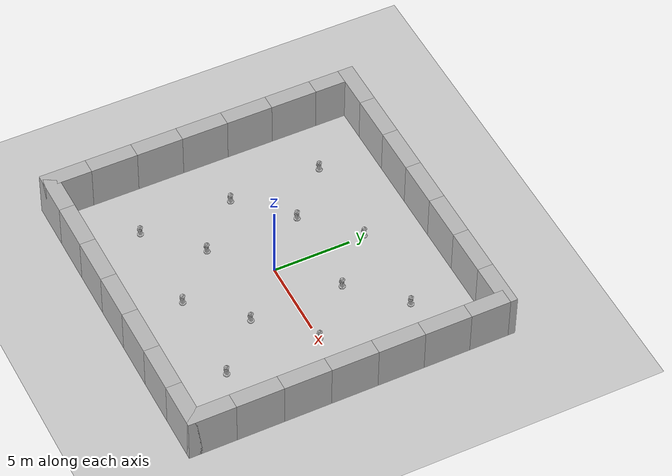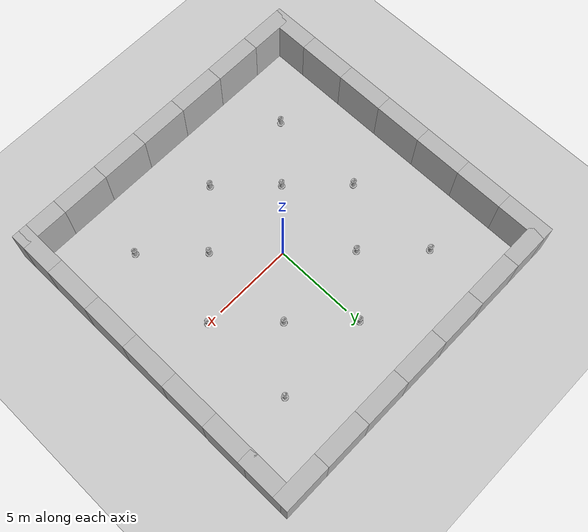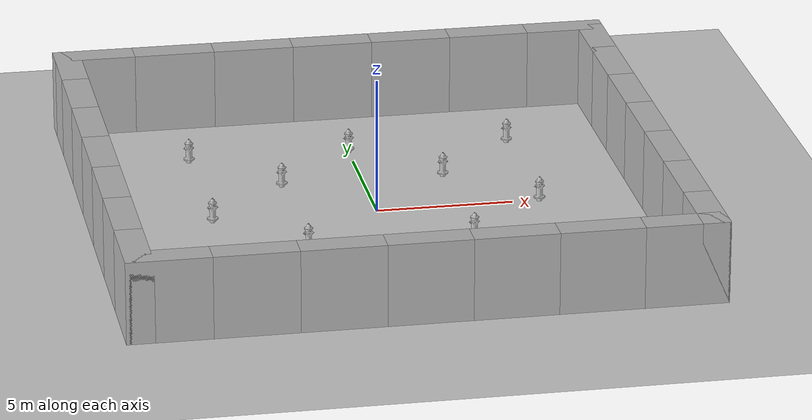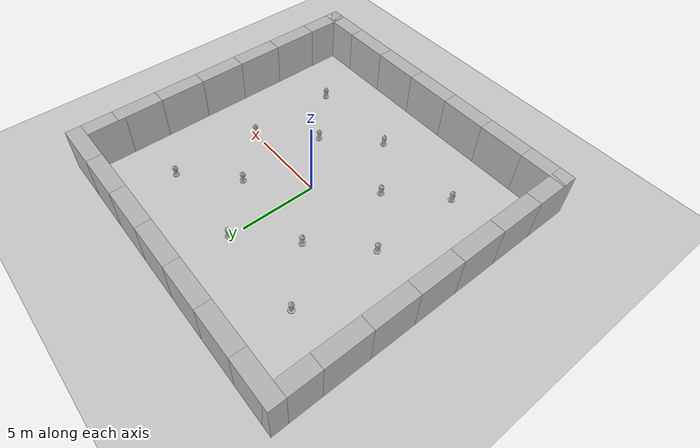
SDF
<sdf version="1.7">
 <world name="default">
  <model name="ground_plane">
   <static>1</static>
   <link name="link">
    <collision name="collision">
     <geometry><plane><normal>0 0 1</normal><size>100 100</size></plane></geometry>
     <surface>
      <contact><collide_bitmask>65535</collide_bitmask></contact>
      <friction><ode><mu>100</mu><mu2>50</mu2></ode></friction>
     </surface>
    </collision>
    <visual name="visual">
     <cast_shadows>0</cast_shadows>
     <geometry><plane><normal>0 0 1</normal><size>100 100</size></plane></geometry>
     <material>
      <script><uri>file://media/materials/scripts/gazebo.material</uri><name>Gazebo/Grey</name></script>
     </material>
    </visual>
   </link>
  </model>
  <model name="brick_box_3x1x3">
   <static>1</static>
   <link name="chassis">
    <pose>0 0 1.5 0 -0 0</pose>
    <collision name="collision"><geometry><box><size>3 1 3</size></box></geometry></collision>
    <visual name="visual">
     <geometry><mesh><uri>model://brick_box_3x1x3/meshes/simple_box.dae</uri><scale>3 1 3</scale></mesh></geometry>
     <material>
      <script>
       <uri>model://brick_box_3x1x3/materials/scripts</uri>
       <uri>model://brick_box_3x1x3/materials/textures</uri>
       <name>BrickBox/Diffuse</name>
      </script>
     </material>
    </visual>
   </link>
   <pose>0 10 0 0 -0 0</pose>
  </model>
  <model name="brick_box_3x1x3_clone">
   <static>1</static>
   <link name="chassis">
    <pose>0 0 1.5 0 -0 0</pose>
    <collision name="collision"><geometry><box><size>3 1 3</size></box></geometry></collision>
    <visual name="visual">
     <geometry><mesh><uri>model://brick_box_3x1x3/meshes/simple_box.dae</uri><scale>3 1 3</scale></mesh></geometry>
     <material>
      <script>
       <uri>model://brick_box_3x1x3/materials/scripts</uri>
       <uri>model://brick_box_3x1x3/materials/textures</uri>
       <name>BrickBox/Diffuse</name>
      </script>
     </material>
    </visual>
   </link>
   <pose>3 10 0 0 -0 0</pose>
  </model>
  <model name="brick_box_3x1x3_clone_0">
   <static>1</static>
   <link name="chassis">
    <pose>0 0 1.5 0 -0 0</pose>
    <collision name="collision"><geometry><box><size>3 1 3</size></box></geometry></collision>
    <visual name="visual">
     <geometry><mesh><uri>model://brick_box_3x1x3/meshes/simple_box.dae</uri><scale>3 1 3</scale></mesh></geometry>
     <material>
      <script>
       <uri>model://brick_box_3x1x3/materials/scripts</uri>
       <uri>model://brick_box_3x1x3/materials/textures</uri>
       <name>BrickBox/Diffuse</name>
      </script>
     </material>
    </visual>
   </link>
   <pose>6 10 0 0 -0 0</pose>
  </model>
  <model name="brick_box_3x1x3_clone_1">
   <static>1</static>
   <link name="chassis">
    <pose>0 0 1.5 0 -0 0</pose>
    <collision name="collision"><geometry><box><size>3 1 3</size></box></geometry></collision>
    <visual name="visual">
     <geometry><mesh><uri>model://brick_box_3x1x3/meshes/simple_box.dae</uri><scale>3 1 3</scale></mesh></geometry>
     <material>
      <script>
       <uri>model://brick_box_3x1x3/materials/scripts</uri>
       <uri>model://brick_box_3x1x3/materials/textures</uri>
       <name>BrickBox/Diffuse</name>
      </script>
     </material>
    </visual>
   </link>
   <pose>9 10 0 0 -0 0</pose>
  </model>
  <model name="brick_box_3x1x3_clone_2">
   <static>1</static>
   <link name="chassis">
    <pose>0 0 1.5 0 -0 0</pose>
    <collision name="collision"><geometry><box><size>3 1 3</size></box></geometry></collision>
    <visual name="visual">
     <geometry><mesh><uri>model://brick_box_3x1x3/meshes/simple_box.dae</uri><scale>3 1 3</scale></mesh></geometry>
     <material>
      <script>
       <uri>model://brick_box_3x1x3/materials/scripts</uri>
       <uri>model://brick_box_3x1x3/materials/textures</uri>
       <name>BrickBox/Diffuse</name>
      </script>
     </material>
    </visual>
   </link>
   <pose>-3 10 0 0 -0 0</pose>
  </model>
  <model name="brick_box_3x1x3_clone_3">
   <static>1</static>
   <link name="chassis">
    <pose>0 0 1.5 0 -0 0</pose>
    <collision name="collision"><geometry><box><size>3 1 3</size></box></geometry></collision>
    <visual name="visual">
     <geometry><mesh><uri>model://brick_box_3x1x3/meshes/simple_box.dae</uri><scale>3 1 3</scale></mesh></geometry>
     <material>
      <script>
       <uri>model://brick_box_3x1x3/materials/scripts</uri>
       <uri>model://brick_box_3x1x3/materials/textures</uri>
       <name>BrickBox/Diffuse</name>
      </script>
     </material>
    </visual>
   </link>
   <pose>-6 10 0 0 -0 0</pose>
  </model>
  <model name="brick_box_3x1x3_clone_4">
   <static>1</static>
   <link name="chassis">
    <pose>0 0 1.5 0 -0 0</pose>
    <collision name="collision"><geometry><box><size>3 1 3</size></box></geometry></collision>
    <visual name="visual">
     <geometry><mesh><uri>model://brick_box_3x1x3/meshes/simple_box.dae</uri><scale>3 1 3</scale></mesh></geometry>
     <material>
      <script>
       <uri>model://brick_box_3x1x3/materials/scripts</uri>
       <uri>model://brick_box_3x1x3/materials/textures</uri>
       <name>BrickBox/Diffuse</name>
      </script>
     </material>
    </visual>
   </link>
   <pose>-9 10 0 0 -0 0</pose>
  </model>
  <model name="brick_box_3x1x3_0_clone">
   <static>1</static>
   <link name="chassis">
    <pose>0 0 1.5 0 -0 0</pose>
    <collision name="collision"><geometry><box><size>3 1 3</size></box></geometry></collision>
    <visual name="visual">
     <geometry><mesh><uri>model://brick_box_3x1x3/meshes/simple_box.dae</uri><scale>3 1 3</scale></mesh></geometry>
     <material>
      <script>
       <uri>model://brick_box_3x1x3/materials/scripts</uri>
       <uri>model://brick_box_3x1x3/materials/textures</uri>
       <name>BrickBox/Diffuse</name>
      </script>
     </material>
    </visual>
   </link>
   <pose>10 -3 0 0 0 -1.5708</pose>
  </model>
  <model name="brick_box_3x1x3_0_clone_0">
   <static>1</static>
   <link name="chassis">
    <pose>0 0 1.5 0 -0 0</pose>
    <collision name="collision"><geometry><box><size>3 1 3</size></box></geometry></collision>
    <visual name="visual">
     <geometry><mesh><uri>model://brick_box_3x1x3/meshes/simple_box.dae</uri><scale>3 1 3</scale></mesh></geometry>
     <material>
      <script>
       <uri>model://brick_box_3x1x3/materials/scripts</uri>
       <uri>model://brick_box_3x1x3/materials/textures</uri>
       <name>BrickBox/Diffuse</name>
      </script>
     </material>
    </visual>
   </link>
   <pose>10 -6 0 0 0 -1.5708</pose>
  </model>
  <model name="brick_box_3x1x3_0_clone_1">
   <static>1</static>
   <link name="chassis">
    <pose>0 0 1.5 0 -0 0</pose>
    <collision name="collision"><geometry><box><size>3 1 3</size></box></geometry></collision>
    <visual name="visual">
     <geometry><mesh><uri>model://brick_box_3x1x3/meshes/simple_box.dae</uri><scale>3 1 3</scale></mesh></geometry>
     <material>
      <script>
       <uri>model://brick_box_3x1x3/materials/scripts</uri>
       <uri>model://brick_box_3x1x3/materials/textures</uri>
       <name>BrickBox/Diffuse</name>
      </script>
     </material>
    </visual>
   </link>
   <pose>10 -9 0 0 0 -1.5708</pose>
  </model>
  <model name="brick_box_3x1x3_0_clone_2">
   <static>1</static>
   <link name="chassis">
    <pose>0 0 1.5 0 -0 0</pose>
    <collision name="collision"><geometry><box><size>3 1 3</size></box></geometry></collision>
    <visual name="visual">
     <geometry><mesh><uri>model://brick_box_3x1x3/meshes/simple_box.dae</uri><scale>3 1 3</scale></mesh></geometry>
     <material>
      <script>
       <uri>model://brick_box_3x1x3/materials/scripts</uri>
       <uri>model://brick_box_3x1x3/materials/textures</uri>
       <name>BrickBox/Diffuse</name>
      </script>
     </material>
    </visual>
   </link>
   <pose>10 3 0 0 0 -1.5708</pose>
  </model>
  <model name="brick_box_3x1x3_0_clone_3">
   <static>1</static>
   <link name="chassis">
    <pose>0 0 1.5 0 -0 0</pose>
    <collision name="collision"><geometry><box><size>3 1 3</size></box></geometry></collision>
    <visual name="visual">
     <geometry><mesh><uri>model://brick_box_3x1x3/meshes/simple_box.dae</uri><scale>3 1 3</scale></mesh></geometry>
     <material>
      <script>
       <uri>model://brick_box_3x1x3/materials/scripts</uri>
       <uri>model://brick_box_3x1x3/materials/textures</uri>
       <name>BrickBox/Diffuse</name>
      </script>
     </material>
    </visual>
   </link>
   <pose>10 6 0 0 0 -1.5708</pose>
  </model>
  <model name="brick_box_3x1x3_0_clone_4">
   <static>1</static>
   <link name="chassis">
    <pose>0 0 1.5 0 -0 0</pose>
    <collision name="collision"><geometry><box><size>3 1 3</size></box></geometry></collision>
    <visual name="visual">
     <geometry><mesh><uri>model://brick_box_3x1x3/meshes/simple_box.dae</uri><scale>3 1 3</scale></mesh></geometry>
     <material>
      <script>
       <uri>model://brick_box_3x1x3/materials/scripts</uri>
       <uri>model://brick_box_3x1x3/materials/textures</uri>
       <name>BrickBox/Diffuse</name>
      </script>
     </material>
    </visual>
   </link>
   <pose>10 8.54287 0 0 0 -1.5708</pose>
  </model>
  <model name="brick_box_3x1x3_0_clone_clone">
   <static>1</static>
   <link name="chassis">
    <pose>0 0 1.5 0 -0 0</pose>
    <collision name="collision"><geometry><box><size>3 1 3</size></box></geometry></collision>
    <visual name="visual">
     <geometry><mesh><uri>model://brick_box_3x1x3/meshes/simple_box.dae</uri><scale>3 1 3</scale></mesh></geometry>
     <material>
      <script>
       <uri>model://brick_box_3x1x3/materials/scripts</uri>
       <uri>model://brick_box_3x1x3/materials/textures</uri>
       <name>BrickBox/Diffuse</name>
      </script>
     </material>
    </visual>
   </link>
   <pose>10 0 0 0 0 -1.5708</pose>
  </model>
  <model name="brick_box_3x1x3_0">
   <static>1</static>
   <link name="chassis">
    <pose>0 0 1.5 0 -0 0</pose>
    <collision name="collision"><geometry><box><size>3 1 3</size></box></geometry></collision>
    <visual name="visual">
     <geometry><mesh><uri>model://brick_box_3x1x3/meshes/simple_box.dae</uri><scale>3 1 3</scale></mesh></geometry>
     <material>
      <script>
       <uri>model://brick_box_3x1x3/materials/scripts</uri>
       <uri>model://brick_box_3x1x3/materials/textures</uri>
       <name>BrickBox/Diffuse</name>
      </script>
     </material>
    </visual>
   </link>
   <pose>0 -10 0 0 -0 0</pose>
  </model>
  <model name="brick_box_3x1x3_0_clone_5">
   <static>1</static>
   <link name="chassis">
    <pose>0 0 1.5 0 -0 0</pose>
    <collision name="collision"><geometry><box><size>3 1 3</size></box></geometry></collision>
    <visual name="visual">
     <geometry><mesh><uri>model://brick_box_3x1x3/meshes/simple_box.dae</uri><scale>3 1 3</scale></mesh></geometry>
     <material>
      <script>
       <uri>model://brick_box_3x1x3/materials/scripts</uri>
       <uri>model://brick_box_3x1x3/materials/textures</uri>
       <name>BrickBox/Diffuse</name>
      </script>
     </material>
    </visual>
   </link>
   <pose>-3 -10 0 0 -0 0</pose>
  </model>
  <model name="brick_box_3x1x3_0_clone_6">
   <static>1</static>
   <link name="chassis">
    <pose>0 0 1.5 0 -0 0</pose>
    <collision name="collision"><geometry><box><size>3 1 3</size></box></geometry></collision>
    <visual name="visual">
     <geometry><mesh><uri>model://brick_box_3x1x3/meshes/simple_box.dae</uri><scale>3 1 3</scale></mesh></geometry>
     <material>
      <script>
       <uri>model://brick_box_3x1x3/materials/scripts</uri>
       <uri>model://brick_box_3x1x3/materials/textures</uri>
       <name>BrickBox/Diffuse</name>
      </script>
     </material>
    </visual>
   </link>
   <pose>-6 -10 0 0 -0 0</pose>
  </model>
  <model name="brick_box_3x1x3_0_clone_7">
   <static>1</static>
   <link name="chassis">
    <pose>0 0 1.5 0 -0 0</pose>
    <collision name="collision"><geometry><box><size>3 1 3</size></box></geometry></collision>
    <visual name="visual">
     <geometry><mesh><uri>model://brick_box_3x1x3/meshes/simple_box.dae</uri><scale>3 1 3</scale></mesh></geometry>
     <material>
      <script>
       <uri>model://brick_box_3x1x3/materials/scripts</uri>
       <uri>model://brick_box_3x1x3/materials/textures</uri>
       <name>BrickBox/Diffuse</name>
      </script>
     </material>
    </visual>
   </link>
   <pose>-9 -10 0 0 -0 0</pose>
  </model>
  <model name="brick_box_3x1x3_0_clone_8">
   <static>1</static>
   <link name="chassis">
    <pose>0 0 1.5 0 -0 0</pose>
    <collision name="collision"><geometry><box><size>3 1 3</size></box></geometry></collision>
    <visual name="visual">
     <geometry><mesh><uri>model://brick_box_3x1x3/meshes/simple_box.dae</uri><scale>3 1 3</scale></mesh></geometry>
     <material>
      <script>
       <uri>model://brick_box_3x1x3/materials/scripts</uri>
       <uri>model://brick_box_3x1x3/materials/textures</uri>
       <name>BrickBox/Diffuse</name>
      </script>
     </material>
    </visual>
   </link>
   <pose>3 -10 0 0 -0 0</pose>
  </model>
  <model name="brick_box_3x1x3_0_clone_9">
   <static>1</static>
   <link name="chassis">
    <pose>0 0 1.5 0 -0 0</pose>
    <collision name="collision"><geometry><box><size>3 1 3</size></box></geometry></collision>
    <visual name="visual">
     <geometry><mesh><uri>model://brick_box_3x1x3/meshes/simple_box.dae</uri><scale>3 1 3</scale></mesh></geometry>
     <material>
      <script>
       <uri>model://brick_box_3x1x3/materials/scripts</uri>
       <uri>model://brick_box_3x1x3/materials/textures</uri>
       <name>BrickBox/Diffuse</name>
      </script>
     </material>
    </visual>
   </link>
   <pose>6 -10 0 0 -0 0</pose>
  </model>
  <model name="brick_box_3x1x3_0_clone_10">
   <static>1</static>
   <link name="chassis">
    <pose>0 0 1.5 0 -0 0</pose>
    <collision name="collision"><geometry><box><size>3 1 3</size></box></geometry></collision>
    <visual name="visual">
     <geometry><mesh><uri>model://brick_box_3x1x3/meshes/simple_box.dae</uri><scale>3 1 3</scale></mesh></geometry>
     <material>
      <script>
       <uri>model://brick_box_3x1x3/materials/scripts</uri>
       <uri>model://brick_box_3x1x3/materials/textures</uri>
       <name>BrickBox/Diffuse</name>
      </script>
     </material>
    </visual>
   </link>
   <pose>9 -10 0 0 -0 0</pose>
  </model>
  <model name="brick_box_3x1x3_1_clone">
   <static>1</static>
   <link name="chassis">
    <pose>0 0 1.5 0 -0 0</pose>
    <collision name="collision"><geometry><box><size>3 1 3</size></box></geometry></collision>
    <visual name="visual">
     <geometry><mesh><uri>model://brick_box_3x1x3/meshes/simple_box.dae</uri><scale>3 1 3</scale></mesh></geometry>
     <material>
      <script>
       <uri>model://brick_box_3x1x3/materials/scripts</uri>
       <uri>model://brick_box_3x1x3/materials/textures</uri>
       <name>BrickBox/Diffuse</name>
      </script>
     </material>
    </visual>
   </link>
   <pose>-10 3 0 0 0 -1.5708</pose>
  </model>
  <model name="brick_box_3x1x3_1_clone_0">
   <static>1</static>
   <link name="chassis">
    <pose>0 0 1.5 0 -0 0</pose>
    <collision name="collision"><geometry><box><size>3 1 3</size></box></geometry></collision>
    <visual name="visual">
     <geometry><mesh><uri>model://brick_box_3x1x3/meshes/simple_box.dae</uri><scale>3 1 3</scale></mesh></geometry>
     <material>
      <script>
       <uri>model://brick_box_3x1x3/materials/scripts</uri>
       <uri>model://brick_box_3x1x3/materials/textures</uri>
       <name>BrickBox/Diffuse</name>
      </script>
     </material>
    </visual>
   </link>
   <pose>-10 6 0 0 0 -1.5708</pose>
  </model>
  <model name="brick_box_3x1x3_1_clone_1">
   <static>1</static>
   <link name="chassis">
    <pose>0 0 1.5 0 -0 0</pose>
    <collision name="collision"><geometry><box><size>3 1 3</size></box></geometry></collision>
    <visual name="visual">
     <geometry><mesh><uri>model://brick_box_3x1x3/meshes/simple_box.dae</uri><scale>3 1 3</scale></mesh></geometry>
     <material>
      <script>
       <uri>model://brick_box_3x1x3/materials/scripts</uri>
       <uri>model://brick_box_3x1x3/materials/textures</uri>
       <name>BrickBox/Diffuse</name>
      </script>
     </material>
    </visual>
   </link>
   <pose>-10 9 0 0 0 -1.5708</pose>
  </model>
  <model name="brick_box_3x1x3_1_clone_2">
   <static>1</static>
   <link name="chassis">
    <pose>0 0 1.5 0 -0 0</pose>
    <collision name="collision"><geometry><box><size>3 1 3</size></box></geometry></collision>
    <visual name="visual">
     <geometry><mesh><uri>model://brick_box_3x1x3/meshes/simple_box.dae</uri><scale>3 1 3</scale></mesh></geometry>
     <material>
      <script>
       <uri>model://brick_box_3x1x3/materials/scripts</uri>
       <uri>model://brick_box_3x1x3/materials/textures</uri>
       <name>BrickBox/Diffuse</name>
      </script>
     </material>
    </visual>
   </link>
   <pose>-10 -3 0 0 0 -1.5708</pose>
  </model>
  <model name="brick_box_3x1x3_1_clone_3">
   <static>1</static>
   <link name="chassis">
    <pose>0 0 1.5 0 -0 0</pose>
    <collision name="collision"><geometry><box><size>3 1 3</size></box></geometry></collision>
    <visual name="visual">
     <geometry><mesh><uri>model://brick_box_3x1x3/meshes/simple_box.dae</uri><scale>3 1 3</scale></mesh></geometry>
     <material>
      <script>
       <uri>model://brick_box_3x1x3/materials/scripts</uri>
       <uri>model://brick_box_3x1x3/materials/textures</uri>
       <name>BrickBox/Diffuse</name>
      </script>
     </material>
    </visual>
   </link>
   <pose>-10 -6 0 0 0 -1.5708</pose>
  </model>
  <model name="brick_box_3x1x3_1_clone_4">
   <static>1</static>
   <link name="chassis">
    <pose>0 0 1.5 0 -0 0</pose>
    <collision name="collision"><geometry><box><size>3 1 3</size></box></geometry></collision>
    <visual name="visual">
     <geometry><mesh><uri>model://brick_box_3x1x3/meshes/simple_box.dae</uri><scale>3 1 3</scale></mesh></geometry>
     <material>
      <script>
       <uri>model://brick_box_3x1x3/materials/scripts</uri>
       <uri>model://brick_box_3x1x3/materials/textures</uri>
       <name>BrickBox/Diffuse</name>
      </script>
     </material>
    </visual>
   </link>
   <pose>-10 -9 0 0 0 -1.5708</pose>
  </model>
  <model name="brick_box_3x1x3_1_clone_clone">
   <static>1</static>
   <link name="chassis">
    <pose>0 0 1.5 0 -0 0</pose>
    <collision name="collision"><geometry><box><size>3 1 3</size></box></geometry></collision>
    <visual name="visual">
     <geometry><mesh><uri>model://brick_box_3x1x3/meshes/simple_box.dae</uri><scale>3 1 3</scale></mesh></geometry>
     <material>
      <script>
       <uri>model://brick_box_3x1x3/materials/scripts</uri>
       <uri>model://brick_box_3x1x3/materials/textures</uri>
       <name>BrickBox/Diffuse</name>
      </script>
     </material>
    </visual>
   </link>
   <pose>-10 0 0 0 0 -1.5708</pose>
  </model>
  <model name="fire_hydrant">
   <static>1</static>
   <link name="link">
    <collision name="collision">
     <geometry><mesh><uri>model://fire_hydrant/meshes/fire_hydrant.dae</uri></mesh></geometry>
    </collision>
    <visual name="visual">
     <geometry><mesh><uri>model://fire_hydrant/meshes/fire_hydrant.dae</uri></mesh></geometry>
    </visual>
   </link>
   <pose>3 3 0 0 -0 0</pose>
  </model>
  <model name="fire_hydrant_clone">
   <static>1</static>
   <link name="link">
    <collision name="collision">
     <geometry><mesh><uri>model://fire_hydrant/meshes/fire_hydrant.dae</uri></mesh></geometry>
    </collision>
    <visual name="visual">
     <geometry><mesh><uri>model://fire_hydrant/meshes/fire_hydrant.dae</uri></mesh></geometry>
    </visual>
   </link>
   <pose>6 6 0 0 -0 0</pose>
  </model>
  <model name="fire_hydrant_clone_0">
   <static>1</static>
   <link name="link">
    <collision name="collision">
     <geometry><mesh><uri>model://fire_hydrant/meshes/fire_hydrant.dae</uri></mesh></geometry>
    </collision>
    <visual name="visual">
     <geometry><mesh><uri>model://fire_hydrant/meshes/fire_hydrant.dae</uri></mesh></geometry>
    </visual>
   </link>
   <pose>-3 3 0 0 -0 0</pose>
  </model>
  <model name="fire_hydrant_clone_1">
   <static>1</static>
   <link name="link">
    <collision name="collision">
     <geometry><mesh><uri>model://fire_hydrant/meshes/fire_hydrant.dae</uri></mesh></geometry>
    </collision>
    <visual name="visual">
     <geometry><mesh><uri>model://fire_hydrant/meshes/fire_hydrant.dae</uri></mesh></geometry>
    </visual>
   </link>
   <pose>-6 6 0 0 -0 0</pose>
  </model>
  <model name="fire_hydrant_clone_2">
   <static>1</static>
   <link name="link">
    <collision name="collision">
     <geometry><mesh><uri>model://fire_hydrant/meshes/fire_hydrant.dae</uri></mesh></geometry>
    </collision>
    <visual name="visual">
     <geometry><mesh><uri>model://fire_hydrant/meshes/fire_hydrant.dae</uri></mesh></geometry>
    </visual>
   </link>
   <pose>3 -3 0 0 -0 0</pose>
  </model>
  <model name="fire_hydrant_clone_3">
   <static>1</static>
   <link name="link">
    <collision name="collision">
     <geometry><mesh><uri>model://fire_hydrant/meshes/fire_hydrant.dae</uri></mesh></geometry>
    </collision>
    <visual name="visual">
     <geometry><mesh><uri>model://fire_hydrant/meshes/fire_hydrant.dae</uri></mesh></geometry>
    </visual>
   </link>
   <pose>6 -6 0 0 -0 0</pose>
  </model>
  <model name="fire_hydrant_clone_4">
   <static>1</static>
   <link name="link">
    <collision name="collision">
     <geometry><mesh><uri>model://fire_hydrant/meshes/fire_hydrant.dae</uri></mesh></geometry>
    </collision>
    <visual name="visual">
     <geometry><mesh><uri>model://fire_hydrant/meshes/fire_hydrant.dae</uri></mesh></geometry>
    </visual>
   </link>
   <pose>-3 -3 0 0 -0 0</pose>
  </model>
  <model name="fire_hydrant_clone_5">
   <static>1</static>
   <link name="link">
    <collision name="collision">
     <geometry><mesh><uri>model://fire_hydrant/meshes/fire_hydrant.dae</uri></mesh></geometry>
    </collision>
    <visual name="visual">
     <geometry><mesh><uri>model://fire_hydrant/meshes/fire_hydrant.dae</uri></mesh></geometry>
    </visual>
   </link>
   <pose>-6 -6 0 0 -0 0</pose>
  </model>
  <model name="fire_hydrant_clone_6">
   <static>1</static>
   <link name="link">
    <collision name="collision">
     <geometry><mesh><uri>model://fire_hydrant/meshes/fire_hydrant.dae</uri></mesh></geometry>
    </collision>
    <visual name="visual">
     <geometry><mesh><uri>model://fire_hydrant/meshes/fire_hydrant.dae</uri></mesh></geometry>
    </visual>
   </link>
   <pose>6 0 0 0 -0 0</pose>
  </model>
  <model name="fire_hydrant_clone_7">
   <static>1</static>
   <link name="link">
    <collision name="collision">
     <geometry><mesh><uri>model://fire_hydrant/meshes/fire_hydrant.dae</uri></mesh></geometry>
    </collision>
    <visual name="visual">
     <geometry><mesh><uri>model://fire_hydrant/meshes/fire_hydrant.dae</uri></mesh></geometry>
    </visual>
   </link>
   <pose>0 6 0 0 -0 0</pose>
  </model>
  <model name="fire_hydrant_clone_8">
   <static>1</static>
   <link name="link">
    <collision name="collision">
     <geometry><mesh><uri>model://fire_hydrant/meshes/fire_hydrant.dae</uri></mesh></geometry>
    </collision>
    <visual name="visual">
     <geometry><mesh><uri>model://fire_hydrant/meshes/fire_hydrant.dae</uri></mesh></geometry>
    </visual>
   </link>
   <pose>-6 0 0 0 -0 0</pose>
  </model>
  <model name="fire_hydrant_clone_9">
   <static>1</static>
   <link name="link">
    <collision name="collision">
     <geometry><mesh><uri>model://fire_hydrant/meshes/fire_hydrant.dae</uri></mesh></geometry>
    </collision>
    <visual name="visual">
     <geometry><mesh><uri>model://fire_hydrant/meshes/fire_hydrant.dae</uri></mesh></geometry>
    </visual>
   </link>
   <pose>0 -6 0 0 -0 0</pose>
  </model>
 </world>
</sdf>
